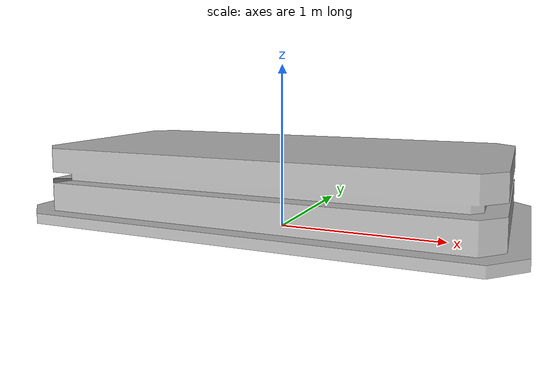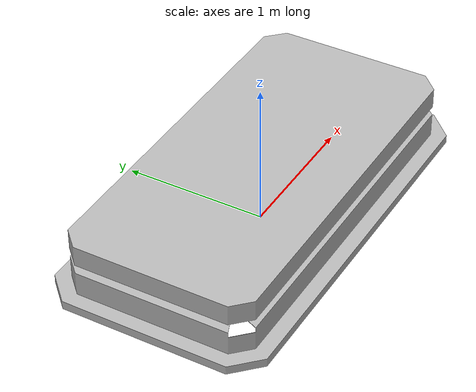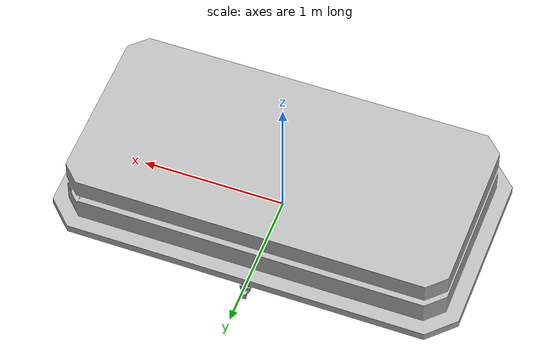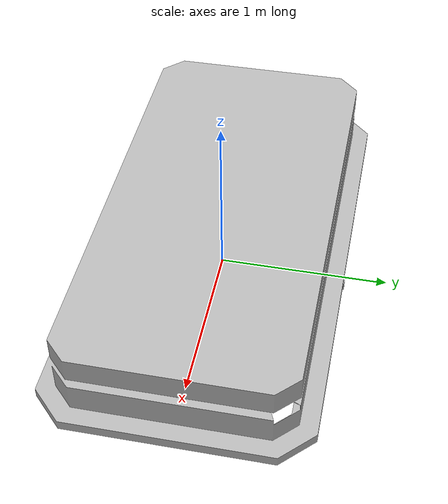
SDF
<?xml version="1.0" ?>
<sdf version="1.6">
  <model name="droneurdf2">

    <!-- Base link -->
    <link name="base_link">
      <pose>0 0 0 0 0 0</pose>
      <inertial>
        <mass>5.86053330036656</mass>
        <inertia>
          <ixx>0.095822324169567</ixx>
          <ixy>-0.000141833714427708</ixy>
          <ixz>0.0</ixz>
          <iyy>0.0942097463698701</iyy>
          <iyz>-0.00047567279662953</iyz>
          <izz>0.14804451113235</izz>
        </inertia>
      </inertial>
      <visual name="base_visual">
        <geometry>
          <mesh>
            <uri>model://models/base_link.STL</uri>
          </mesh>
        </geometry>
      </visual>
      <collision name="base_collision">
        <geometry>
          <mesh>
            <uri>model://models/base_link.STL</uri>
          </mesh>
        </geometry>
      </collision>
    </link>

    <!-- Camera link -->
    <link name="camera_link">
      <pose>0 0.7 0.02 0 0 0</pose> <!-- adjust Z to place camera above base -->
      <inertial>
        <mass>0.175587717265154</mass>
        <inertia>
          <ixx>0.000101692885115253</ixx>
          <ixy>0.0</ixy>
          <ixz>0.0</ixz>
          <iyy>0.000104799367062802</iyy>
          <iyz>0.0</iyz>
          <izz>0.000106221244379781</izz>
        </inertia>
      </inertial>
      <visual name="camera_visual">
        <geometry>
          <mesh>
            <uri>model://models/camera_link.STL</uri>
          </mesh>
        </geometry>
      </visual>
      <collision name="camera_collision">
        <geometry>
          <mesh>
            <uri>model://models/camera_link.STL</uri>
          </mesh>
        </geometry>
      </collision>

      <!-- Camera sensor directly attached to camera_link -->
      <sensor name="front_camera_sensor" type="camera">
        <pose>0 0 0 0 0 0</pose>
        <camera>
          <horizontal_fov>1.047</horizontal_fov>
          <image>
            <width>640</width>
            <height>480</height>
            <format>R8G8B8</format>
          </image>
          <clip>
            <near>0.1</near>
            <far>100</far>
          </clip>
        </camera>
        <always_on>true</always_on>
        <update_rate>30</update_rate>
        <visualize>true</visualize>
      </sensor>
    </link>

    <!-- Fixed joint to attach camera_link to base_link -->
    <joint name="camera_joint" type="fixed">
      <parent>base_link</parent>
      <child>camera_link</child>
      <pose>0 0 0 0 0 0</pose>
    </joint>

  </model>
</sdf>
